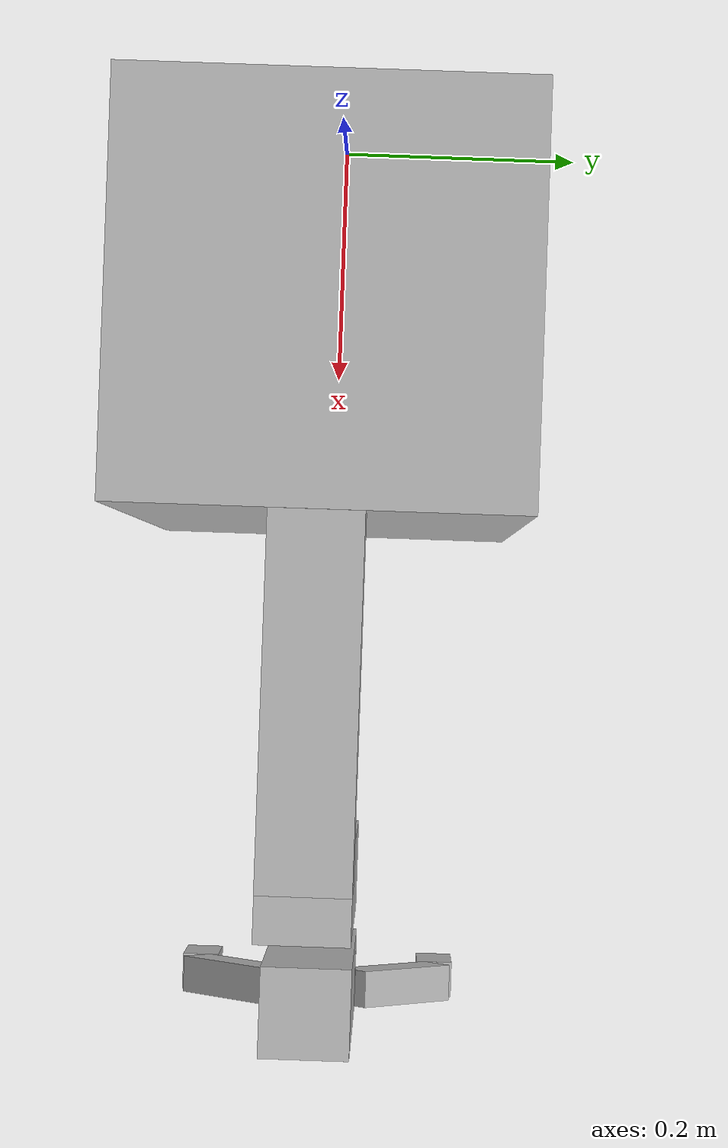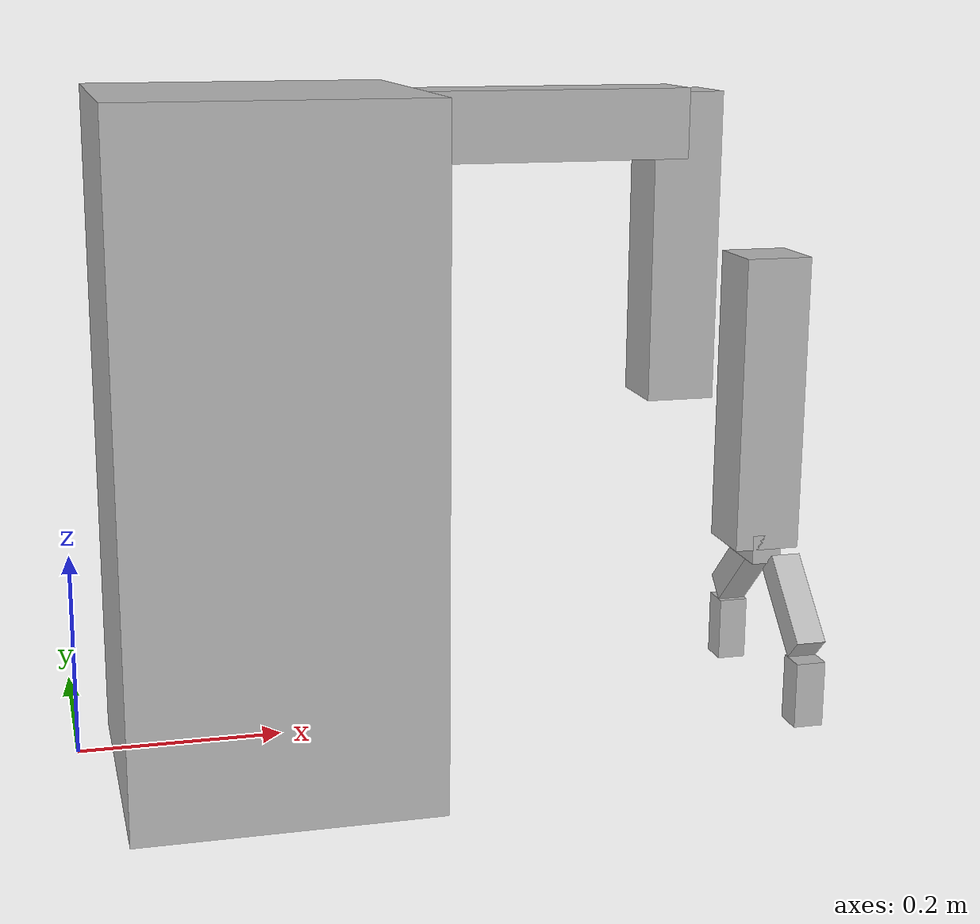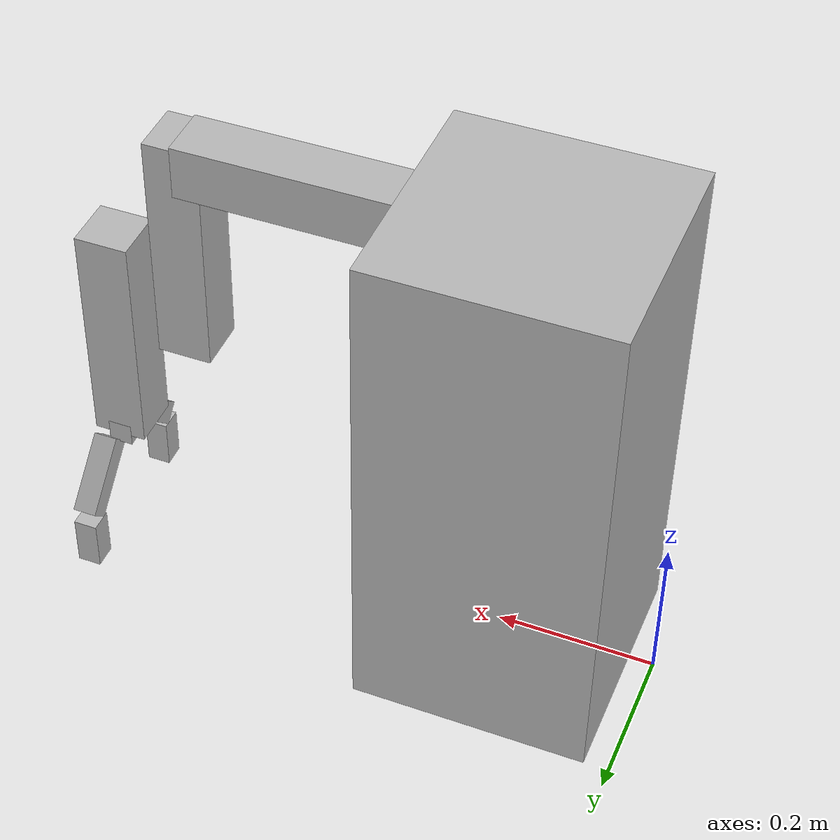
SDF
<?xml version="1.0" ?>
<sdf version="1.4">
  <model name="simple_manipulator2">

    <include>
      <uri>model://my_gripper2</uri>
      <pose>0.7 0 0.017 0 0 0</pose>
    </include>

    <include>
      <uri>model://my_simple_arm</uri>
      <pose>0 0 0 0 0 0</pose>
    </include>

    <joint name="arm_gripper_joint" type="prismatic">
      <parent>simple_arm::forearm</parent>
      <child>simple_gripper2::riser</child>
      <axis>
                <limit>
                    <lower>0</lower>
                    <upper>0.3</upper>
                </limit>
                <xyz>0 0 1</xyz>
            </axis>
    </joint>

  </model>
</sdf>

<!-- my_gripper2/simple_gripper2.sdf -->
<sdf version="1.4">
    <model name="simple_gripper2">
        <link name="riser">
            <pose>0.0 0.0 0.3 0 0 0</pose>
            <inertial>
                <pose>0 0 -0.17 0 0 0</pose>
                <inertia>
                    <ixx>0.01</ixx>
                    <ixy>0</ixy>
                    <ixz>0</ixz>
                    <iyy>0.01</iyy>
                    <iyz>0</iyz>
                    <izz>0.01</izz>
                </inertia>
                <mass>10.0</mass>
            </inertial>
            <collision name="collision">
                <geometry>
                    <box>
                        <size>0.067 0.067 0.3</size>
                    </box>
                </geometry>
            </collision>
            <visual name="visual">
                <geometry>
                    <box>
                        <size>0.067 0.067 0.3</size>
                    </box>
                </geometry>
                <material>
                    <script>Gazebo/Purple</script>
                </material>
            </visual>
        </link>
        <link name="palm">
            <pose>0.0 0.0 0.15 0 0 0</pose>
            <inertial>
                <inertia>
                    <ixx>0.01</ixx>
                    <ixy>0</ixy>
                    <ixz>0</ixz>
                    <iyy>0.01</iyy>
                    <iyz>0</iyz>
                    <izz>0.01</izz>
                </inertia>
                <mass>0.5</mass>
            </inertial>
            <collision name="collision">
                <geometry>
                    <box>
                        <size>0.03 0.067 0.03</size>
                    </box>
                </geometry>
            </collision>
            <visual name="visual">
                <geometry>
                    <box>
                        <size>0.03 0.067 0.03</size>
                    </box>
                </geometry>
                <material>
                    <script>Gazebo/Red</script>
                </material>
            </visual>
        </link>
        <link name="left_finger">
            <pose>0.017 0.067 0.1 -0.78539 0 0</pose>
            <inertial>
                <inertia>
                    <ixx>0.01</ixx>
                    <ixy>0</ixy>
                    <ixz>0</ixz>
                    <iyy>0.01</iyy>
                    <iyz>0</iyz>
                    <izz>0.01</izz>
                </inertia>
                <mass>0.1</mass>
            </inertial>
            <collision name="collision">
                <geometry>
                    <box>
                        <size>0.03 0.1 0.03</size>
                    </box>
                </geometry>
            </collision>
            <visual name="visual">
                <geometry>
                    <box>
                        <size>0.03 0.1 0.03</size>
                    </box>
                </geometry>
                <material>
                    <script>Gazebo/Blue</script>
                </material>
            </visual>
        </link>
        <link name="left_finger_tip">
            <pose>0.017 0.1 0.021 1.5707 0 0</pose>
            <inertial>
                <inertia>
                    <ixx>0.01</ixx>
                    <ixy>0</ixy>
                    <ixz>0</ixz>
                    <iyy>0.01</iyy>
                    <iyz>0</iyz>
                    <izz>0.01</izz>
                </inertia>
                <mass>0.1</mass>
            </inertial>
            <collision name="collision">
                <geometry>
                    <box>
                        <size>0.03 0.067 0.03</size>
                    </box>
                </geometry>
            </collision>
            <visual name="visual">
                <geometry>
                    <box>
                        <size>0.03 0.067 0.03</size>
                    </box>
                </geometry>
                <material>
                    <script>Gazebo/Blue</script>
                </material>
            </visual>
        </link>
        <link name="right_finger">
            <pose>0.017 -0.067 0.1 0.78539 0 0</pose>
            <inertial>
                <inertia>
                    <ixx>0.01</ixx>
                    <ixy>0</ixy>
                    <ixz>0</ixz>
                    <iyy>0.01</iyy>
                    <iyz>0</iyz>
                    <izz>0.01</izz>
                </inertia>
                <mass>0.1</mass>
            </inertial>
            <collision name="collision">
                <geometry>
                    <box>
                        <size>0.03 0.1 0.03</size>
                    </box>
                </geometry>
            </collision>
            <visual name="visual">
                <geometry>
                    <box>
                        <size>0.03 0.1 0.03</size>
                    </box>
                </geometry>
                <material>
                    <script>Gazebo/Green</script>
                </material>
            </visual>
        </link>
        <link name="right_finger_tip">
            <pose>0.017 -0.1 0.021 1.5707 0 0</pose>
            <inertial>
                <inertia>
                    <ixx>0.01</ixx>
                    <ixy>0</ixy>
                    <ixz>0</ixz>
                    <iyy>0.01</iyy>
                    <iyz>0</iyz>
                    <izz>0.01</izz>
                </inertia>
                <mass>0.1</mass>
            </inertial>
            <collision name="collision">
                <geometry>
                    <box>
                        <size>0.03 0.067 0.03</size>
                    </box>
                </geometry>
            </collision>
            <visual name="visual">
                <geometry>
                    <box>
                        <size>0.03 0.067 0.03</size>
                    </box>
                </geometry>
                <material>
                    <script>Gazebo/Green</script>
                </material>
            </visual>
        </link>
        <static>false</static>

        <joint name="palm_left_finger" type="revolute">
            <pose>0 -0.05 0 0 0 0</pose>
            <child>left_finger</child>
            <parent>palm</parent>
            <axis>
                <limit>
                    <lower>-0.4</lower>
                    <upper>0.4</upper>
                </limit>
                <xyz>1 0 0</xyz>
            </axis>
        </joint>
        <joint name="left_finger_tip_joint" type="revolute">
            <pose>0 0.03 0 0 0 0</pose>
            <child>left_finger_tip</child>
            <parent>left_finger</parent>
            <axis>
                <limit>
                    <lower>-0.4</lower>
                    <upper>0.4</upper>
                </limit>
                <xyz>1 0 0</xyz>
            </axis>
        </joint>
        <joint name="palm_right_finger" type="revolute">
            <pose>0 0.05 0 0 0 0</pose>
            <child>right_finger</child>
            <parent>palm</parent>
            <axis>
                <limit>
                    <lower>-0.4</lower>
                    <upper>0.4</upper>
                </limit>
                <xyz>1 0 0</xyz>
            </axis>
        </joint>
        <joint name="right_finger_tip_joint" type="revolute">
            <pose>0 0.03 0 0 0 0</pose>
            <child>right_finger_tip</child>
            <parent>right_finger</parent>
            <axis>
                <limit>
                    <lower>-0.4</lower>
                    <upper>0.4</upper>
                </limit>
                <xyz>1 0 0</xyz>
            </axis>
        </joint>
        <joint name="palm_riser" type="fixed">
            <child>palm</child>
            <parent>riser</parent>
        </joint>
    </model>
</sdf>

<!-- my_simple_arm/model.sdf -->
<sdf version='1.5'>
  <model name="simple_arm">
    <link name='base'>
      <pose>0.187 0 0.3 0 0 0</pose>

      <inertial>
        <mass>1000.0</mass>
        <pose>-0.03 0 -0.03 0 0 0</pose>
        <inertia>
          <ixx>0.5</ixx>
          <iyy>1.0</iyy>
          <izz>0.1</izz>
        </inertia>
      </inertial>

      <collision name='collision'>
        <geometry>
          <box>
            <size>0.3 0.3 0.67</size>
          </box>
        </geometry>
      </collision>

      <visual name='visual'>
        <geometry>
          <box>
            <size>0.3 0.3 0.67</size>
          </box>
        </geometry>
      </visual>
    </link>
    <link name='arm'>
      <pose>0.45 0 0.6 0 0 0</pose>

      <inertial>
        <mass>0.5</mass>
        <pose>-0.03 0 -0.03 0 0 0</pose>
        <inertia>
          <ixx>0.5</ixx>
          <iyy>1.0</iyy>
          <izz>0.1</izz>
        </inertia>
      </inertial>

      <collision name='collision'>
        <geometry>
          <box>
            <size>0.3 0.067 0.067</size>
          </box>
        </geometry>
      </collision>

      <visual name='visual'>
        <geometry>
          <box>
            <size>0.3 0.067 0.067</size>
          </box>
        </geometry>
      </visual>
    </link>
    <link name='forearm'>
      <pose>0.6 0 0.48 0 0 0</pose>

      <inertial>
        <mass>0.5</mass>
        <pose>-0.03 0 -0.03 0 0 0</pose>
        <inertia>
          <ixx>0.5</ixx>
          <iyy>1.0</iyy>
          <izz>0.1</izz>
        </inertia>
      </inertial>

      <collision name='collision'>
        <geometry>
          <box>
            <size>0.067 0.067 0.3</size>
          </box>
        </geometry>
      </collision>

      <visual name='visual'>
        <geometry>
          <box>
            <size>0.067 0.067 0.3</size>
          </box>
        </geometry>
      </visual>
    </link>
    <joint name="arm_base_joint" type="fixed">
      <parent>base</parent>
      <child>arm</child>

    </joint>
     <joint name="forearm_arm_joint" type="fixed">
      <parent>arm</parent>
      <child>forearm</child>

    </joint>
   <static>0</static>
  </model>
 </sdf>
